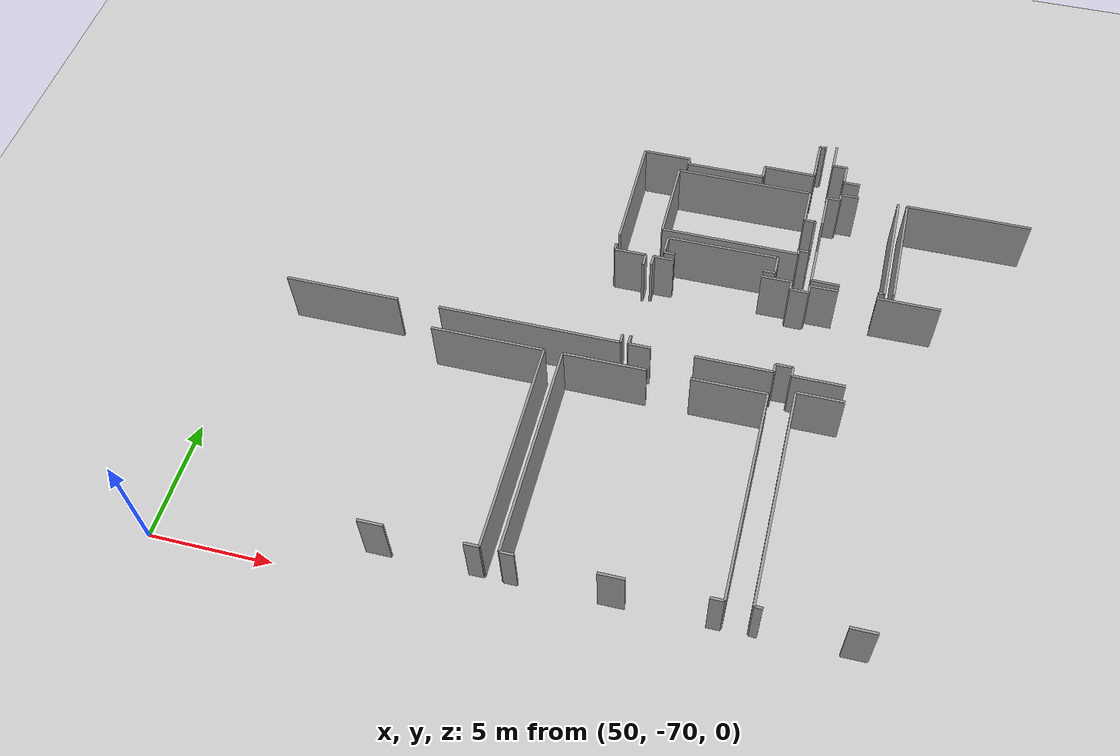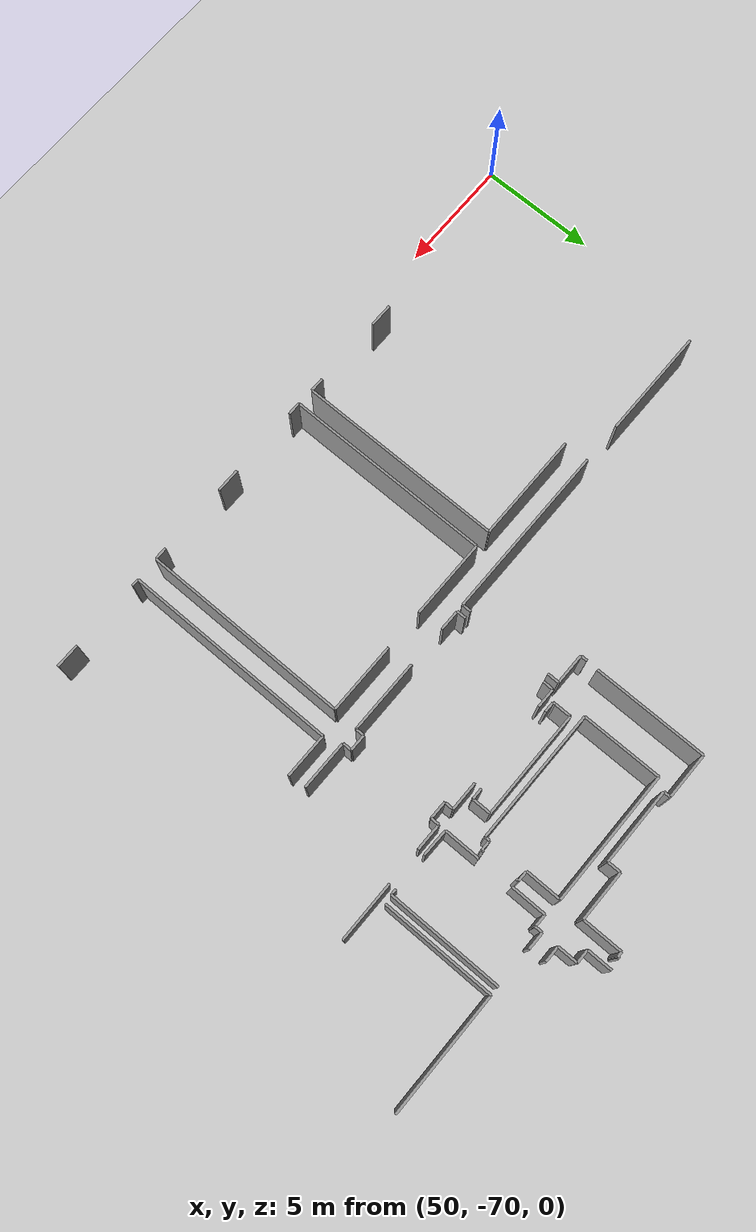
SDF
<sdf version="1.6">
 <world name="default">
  <model name="ground_plane">
   <static>1</static>
   <link name="link">
    <collision name="collision">
     <geometry><plane><normal>0 0 1</normal><size>100 100</size></plane></geometry>
     <surface><friction><ode><mu>100</mu><mu2>50</mu2></ode></friction></surface>
    </collision>
    <visual name="visual">
     <cast_shadows>0</cast_shadows>
     <geometry><plane><normal>0 0 1</normal><size>100 100</size></plane></geometry>
     <material>
      <script><uri>file://media/materials/scripts/gazebo.material</uri><name>Gazebo/Grey</name></script>
     </material>
    </visual>
   </link>
  </model>
  <model name="0510035519_A_40_1_102">
   <static>1</static>
   <link name="Wall_831">
    <collision name="Wall_831_Collision">
     <geometry><box><size>4.66946244758 0.1 2.5</size></box></geometry>
     <pose>2.33473122379 0 1.25 0 0 0</pose>
    </collision>
    <visual name="Wall_831_Visual">
     <pose>2.33473122379 0 1.25 0 0 0</pose>
     <geometry><box><size>4.66946244758 0.1 2.5</size></box></geometry>
     <material>
      <script><uri>file://media/materials/scripts/gazebo.material</uri><name>Gazebo/Grey</name></script>
      <ambient>1 1 1 1</ambient>
     </material>
    </visual>
    <pose>174.856525607 -128.491294955 0 0 0 0.0</pose>
   </link>
   <link name="Wall_832">
    <collision name="Wall_832_Collision">
     <geometry><box><size>8.89414156818 0.1 2.5</size></box></geometry>
     <pose>4.44707078409 0 1.25 0 0 0</pose>
    </collision>
    <visual name="Wall_832_Visual">
     <pose>4.44707078409 0 1.25 0 0 0</pose>
     <geometry><box><size>8.89414156818 0.1 2.5</size></box></geometry>
     <material>
      <script><uri>file://media/materials/scripts/gazebo.material</uri><name>Gazebo/Grey</name></script>
      <ambient>1 1 1 1</ambient>
     </material>
    </visual>
    <pose>179.525988054 -128.491294955 0 0 0 -1.57079632679</pose>
   </link>
   <link name="Wall_833">
    <collision name="Wall_833_Collision">
     <geometry><box><size>0.605921972296 0.1 2.5</size></box></geometry>
     <pose>0.302960986148 0 1.25 0 0 0</pose>
    </collision>
    <visual name="Wall_833_Visual">
     <pose>0.302960986148 0 1.25 0 0 0</pose>
     <geometry><box><size>0.605921972296 0.1 2.5</size></box></geometry>
     <material>
      <script><uri>file://media/materials/scripts/gazebo.material</uri><name>Gazebo/Grey</name></script>
      <ambient>1 1 1 1</ambient>
     </material>
    </visual>
    <pose>179.525988054 -137.385436523 0 0 0 3.14159265359</pose>
   </link>
   <link name="Wall_834">
    <collision name="Wall_834_Collision">
     <geometry><box><size>1.02605159487 0.1 2.5</size></box></geometry>
     <pose>0.513025797433 0 1.25 0 0 0</pose>
    </collision>
    <visual name="Wall_834_Visual">
     <pose>0.513025797433 0 1.25 0 0 0</pose>
     <geometry><box><size>1.02605159487 0.1 2.5</size></box></geometry>
     <material>
      <script><uri>file://media/materials/scripts/gazebo.material</uri><name>Gazebo/Grey</name></script>
      <ambient>1 1 1 1</ambient>
     </material>
    </visual>
    <pose>175.895539459 -137.385436523 0 0 0 3.14159265359</pose>
   </link>
   <link name="Wall_836">
    <collision name="Wall_836_Collision">
     <geometry><box><size>8.89185411107 0.1 2.5</size></box></geometry>
     <pose>4.44592705553 0 1.25 0 0 0</pose>
    </collision>
    <visual name="Wall_836_Visual">
     <pose>4.44592705553 0 1.25 0 0 0</pose>
     <geometry><box><size>8.89185411107 0.1 2.5</size></box></geometry>
     <material>
      <script><uri>file://media/materials/scripts/gazebo.material</uri><name>Gazebo/Grey</name></script>
      <ambient>1 1 1 1</ambient>
     </material>
    </visual>
    <pose>180.270428263 -137.379590799 0 0 0 1.57079632679</pose>
   </link>
   <link name="Wall_837">
    <collision name="Wall_837_Collision">
     <geometry><box><size>3.4159359512 0.1 2.5</size></box></geometry>
     <pose>1.7079679756 0 1.25 0 0 0</pose>
    </collision>
    <visual name="Wall_837_Visual">
     <pose>1.7079679756 0 1.25 0 0 0</pose>
     <geometry><box><size>3.4159359512 0.1 2.5</size></box></geometry>
     <material>
      <script><uri>file://media/materials/scripts/gazebo.material</uri><name>Gazebo/Grey</name></script>
      <ambient>1 1 1 1</ambient>
     </material>
    </visual>
    <pose>180.270428263 -128.487736688 0 0 0 0.0</pose>
   </link>
   <link name="Wall_838">
    <collision name="Wall_838_Collision">
     <geometry><box><size>3.05095946118 0.1 2.5</size></box></geometry>
     <pose>1.52547973059 0 1.25 0 0 0</pose>
    </collision>
    <visual name="Wall_838_Visual">
     <pose>1.52547973059 0 1.25 0 0 0</pose>
     <geometry><box><size>3.05095946118 0.1 2.5</size></box></geometry>
     <material>
      <script><uri>file://media/materials/scripts/gazebo.material</uri><name>Gazebo/Grey</name></script>
      <ambient>1 1 1 1</ambient>
     </material>
    </visual>
    <pose>185.43855636 -128.487736688 0 0 0 0.0</pose>
   </link>
   <link name="Wall_839">
    <collision name="Wall_839_Collision">
     <geometry><box><size>8.92464099631 0.1 2.5</size></box></geometry>
     <pose>4.46232049816 0 1.25 0 0 0</pose>
    </collision>
    <visual name="Wall_839_Visual">
     <pose>4.46232049816 0 1.25 0 0 0</pose>
     <geometry><box><size>8.92464099631 0.1 2.5</size></box></geometry>
     <material>
      <script><uri>file://media/materials/scripts/gazebo.material</uri><name>Gazebo/Grey</name></script>
      <ambient>1 1 1 1</ambient>
     </material>
    </visual>
    <pose>188.489515822 -128.487736688 0 0 0 -1.57079632679</pose>
   </link>
   <link name="Wall_840">
    <collision name="Wall_840_Collision">
     <geometry><box><size>0.538060744694 0.1 2.5</size></box></geometry>
     <pose>0.269030372347 0 1.25 0 0 0</pose>
    </collision>
    <visual name="Wall_840_Visual">
     <pose>0.269030372347 0 1.25 0 0 0</pose>
     <geometry><box><size>0.538060744694 0.1 2.5</size></box></geometry>
     <material>
      <script><uri>file://media/materials/scripts/gazebo.material</uri><name>Gazebo/Grey</name></script>
      <ambient>1 1 1 1</ambient>
     </material>
    </visual>
    <pose>188.489515822 -137.412377685 0 0 0 3.14159265359</pose>
   </link>
   <link name="Wall_841">
    <collision name="Wall_841_Collision">
     <geometry><box><size>1.03240564239 0.1 2.5</size></box></geometry>
     <pose>0.516202821197 0 1.25 0 0 0</pose>
    </collision>
    <visual name="Wall_841_Visual">
     <pose>0.516202821197 0 1.25 0 0 0</pose>
     <geometry><box><size>1.03240564239 0.1 2.5</size></box></geometry>
     <material>
      <script><uri>file://media/materials/scripts/gazebo.material</uri><name>Gazebo/Grey</name></script>
      <ambient>1 1 1 1</ambient>
     </material>
    </visual>
    <pose>184.913966196 -137.412377685 0 0 0 3.14159265359</pose>
   </link>
   <link name="Wall_842">
    <collision name="Wall_842_Collision">
     <geometry><box><size>0.555852077773 0.1 2.5</size></box></geometry>
     <pose>0.277926038887 0 1.25 0 0 0</pose>
    </collision>
    <visual name="Wall_842_Visual">
     <pose>0.277926038887 0 1.25 0 0 0</pose>
     <geometry><box><size>0.555852077773 0.1 2.5</size></box></geometry>
     <material>
      <script><uri>file://media/materials/scripts/gazebo.material</uri><name>Gazebo/Grey</name></script>
      <ambient>1 1 1 1</ambient>
     </material>
    </visual>
    <pose>180.831363579 -137.412377685 0 0 0 3.14159265359</pose>
   </link>
   <link name="Wall_843">
    <collision name="Wall_843_Collision">
     <geometry><box><size>0.0331785948003 0.1 2.5</size></box></geometry>
     <pose>0.0165892974001 0 1.25 0 0 0</pose>
    </collision>
    <visual name="Wall_843_Visual">
     <pose>0.0165892974001 0 1.25 0 0 0</pose>
     <geometry><box><size>0.0331785948003 0.1 2.5</size></box></geometry>
     <material>
      <script><uri>file://media/materials/scripts/gazebo.material</uri><name>Gazebo/Grey</name></script>
      <ambient>1 1 1 1</ambient>
     </material>
    </visual>
    <pose>180.275511501 -137.412377685 0 0 0 1.72461047703</pose>
   </link>
   <link name="Wall_844">
    <collision name="Wall_844_Collision">
     <geometry><box><size>9.1907485068 0.1 2.5</size></box></geometry>
     <pose>4.5953742534 0 1.25 0 0 0</pose>
    </collision>
    <visual name="Wall_844_Visual">
     <pose>4.5953742534 0 1.25 0 0 0</pose>
     <geometry><box><size>9.1907485068 0.1 2.5</size></box></geometry>
     <material>
      <script><uri>file://media/materials/scripts/gazebo.material</uri><name>Gazebo/Grey</name></script>
      <ambient>1 1 1 1</ambient>
     </material>
    </visual>
    <pose>189.523954759 -137.367391028 0 0 0 1.57079632679</pose>
   </link>
   <link name="Wall_845">
    <collision name="Wall_845_Collision">
     <geometry><box><size>1.92476807727 0.1 2.5</size></box></geometry>
     <pose>0.962384038633 0 1.25 0 0 0</pose>
    </collision>
    <visual name="Wall_845_Visual">
     <pose>0.962384038633 0 1.25 0 0 0</pose>
     <geometry><box><size>1.92476807727 0.1 2.5</size></box></geometry>
     <material>
      <script><uri>file://media/materials/scripts/gazebo.material</uri><name>Gazebo/Grey</name></script>
      <ambient>1 1 1 1</ambient>
     </material>
    </visual>
    <pose>189.523954759 -128.176642521 0 0 0 0.0</pose>
   </link>
   <link name="Wall_849">
    <collision name="Wall_849_Collision">
     <geometry><box><size>1.03570974711 0.1 2.5</size></box></geometry>
     <pose>0.517854873554 0 1.25 0 0 0</pose>
    </collision>
    <visual name="Wall_849_Visual">
     <pose>0.517854873554 0 1.25 0 0 0</pose>
     <geometry><box><size>1.03570974711 0.1 2.5</size></box></geometry>
     <material>
      <script><uri>file://media/materials/scripts/gazebo.material</uri><name>Gazebo/Grey</name></script>
      <ambient>1 1 1 1</ambient>
     </material>
    </visual>
    <pose>193.904689287 -137.384928199 0 0 0 3.14159265359</pose>
   </link>
   <link name="Wall_850">
    <collision name="Wall_850_Collision">
     <geometry><box><size>0.319454919681 0.1 2.5</size></box></geometry>
     <pose>0.159727459841 0 1.25 0 0 0</pose>
    </collision>
    <visual name="Wall_850_Visual">
     <pose>0.159727459841 0 1.25 0 0 0</pose>
     <geometry><box><size>0.319454919681 0.1 2.5</size></box></geometry>
     <material>
      <script><uri>file://media/materials/scripts/gazebo.material</uri><name>Gazebo/Grey</name></script>
      <ambient>1 1 1 1</ambient>
     </material>
    </visual>
    <pose>189.842927945 -137.384928199 0 0 0 3.08666787175</pose>
   </link>
   <link name="Wall_867">
    <collision name="Wall_867_Collision">
     <geometry><box><size>0.0866692082857 0.1 2.5</size></box></geometry>
     <pose>0.0433346041428 0 1.25 0 0 0</pose>
    </collision>
    <visual name="Wall_867_Visual">
     <pose>0.0433346041428 0 1.25 0 0 0</pose>
     <geometry><box><size>0.0866692082857 0.1 2.5</size></box></geometry>
     <material>
      <script><uri>file://media/materials/scripts/gazebo.material</uri><name>Gazebo/Grey</name></script>
      <ambient>1 1 1 1</ambient>
     </material>
    </visual>
    <pose>188.76604397 -114.983098234 0 0 0 -1.57079632679</pose>
   </link>
   <link name="Wall_868">
    <collision name="Wall_868_Collision">
     <geometry><box><size>0.240182996569 0.1 2.5</size></box></geometry>
     <pose>0.120091498284 0 1.25 0 0 0</pose>
    </collision>
    <visual name="Wall_868_Visual">
     <pose>0.120091498284 0 1.25 0 0 0</pose>
     <geometry><box><size>0.240182996569 0.1 2.5</size></box></geometry>
     <material>
      <script><uri>file://media/materials/scripts/gazebo.material</uri><name>Gazebo/Grey</name></script>
      <ambient>1 1 1 1</ambient>
     </material>
    </visual>
    <pose>188.76604397 -115.069767442 0 0 0 3.14159265359</pose>
   </link>
   <link name="Wall_869">
    <collision name="Wall_869_Collision">
     <geometry><box><size>1.73567162282 0.1 2.5</size></box></geometry>
     <pose>0.867835811412 0 1.25 0 0 0</pose>
    </collision>
    <visual name="Wall_869_Visual">
     <pose>0.867835811412 0 1.25 0 0 0</pose>
     <geometry><box><size>1.73567162282 0.1 2.5</size></box></geometry>
     <material>
      <script><uri>file://media/materials/scripts/gazebo.material</uri><name>Gazebo/Grey</name></script>
      <ambient>1 1 1 1</ambient>
     </material>
    </visual>
    <pose>188.525860973 -115.069767442 0 0 0 -1.57079632679</pose>
   </link>
   <link name="Wall_870">
    <collision name="Wall_870_Collision">
     <geometry><box><size>2.15961367391 0.1 2.5</size></box></geometry>
     <pose>1.07980683696 0 1.25 0 0 0</pose>
    </collision>
    <visual name="Wall_870_Visual">
     <pose>1.07980683696 0 1.25 0 0 0</pose>
     <geometry><box><size>2.15961367391 0.1 2.5</size></box></geometry>
     <material>
      <script><uri>file://media/materials/scripts/gazebo.material</uri><name>Gazebo/Grey</name></script>
      <ambient>1 1 1 1</ambient>
     </material>
    </visual>
    <pose>188.525860973 -116.805439065 0 0 0 3.14159265359</pose>
   </link>
   <link name="Wall_871">
    <collision name="Wall_871_Collision">
     <geometry><box><size>0.590418096327 0.1 2.5</size></box></geometry>
     <pose>0.295209048164 0 1.25 0 0 0</pose>
    </collision>
    <visual name="Wall_871_Visual">
     <pose>0.295209048164 0 1.25 0 0 0</pose>
     <geometry><box><size>0.590418096327 0.1 2.5</size></box></geometry>
     <material>
      <script><uri>file://media/materials/scripts/gazebo.material</uri><name>Gazebo/Grey</name></script>
      <ambient>1 1 1 1</ambient>
     </material>
    </visual>
    <pose>186.3662473 -116.805439065 0 0 0 -1.57079632679</pose>
   </link>
   <link name="Wall_872">
    <collision name="Wall_872_Collision">
     <geometry><box><size>3.29876731478 0.1 2.5</size></box></geometry>
     <pose>1.64938365739 0 1.25 0 0 0</pose>
    </collision>
    <visual name="Wall_872_Visual">
     <pose>1.64938365739 0 1.25 0 0 0</pose>
     <geometry><box><size>3.29876731478 0.1 2.5</size></box></geometry>
     <material>
      <script><uri>file://media/materials/scripts/gazebo.material</uri><name>Gazebo/Grey</name></script>
      <ambient>1 1 1 1</ambient>
     </material>
    </visual>
    <pose>186.3662473 -117.395857161 0 0 0 3.14159265359</pose>
   </link>
   <link name="Wall_873">
    <collision name="Wall_873_Collision">
     <geometry><box><size>0.295081967213 0.1 2.5</size></box></geometry>
     <pose>0.147540983607 0 1.25 0 0 0</pose>
    </collision>
    <visual name="Wall_873_Visual">
     <pose>0.147540983607 0 1.25 0 0 0</pose>
     <geometry><box><size>0.295081967213 0.1 2.5</size></box></geometry>
     <material>
      <script><uri>file://media/materials/scripts/gazebo.material</uri><name>Gazebo/Grey</name></script>
      <ambient>1 1 1 1</ambient>
     </material>
    </visual>
    <pose>183.067479985 -117.395857161 0 0 0 1.57079632679</pose>
   </link>
   <link name="Wall_874">
    <collision name="Wall_874_Collision">
     <geometry><box><size>1.99491676198 0.1 2.5</size></box></geometry>
     <pose>0.997458380989 0 1.25 0 0 0</pose>
    </collision>
    <visual name="Wall_874_Visual">
     <pose>0.997458380989 0 1.25 0 0 0</pose>
     <geometry><box><size>1.99491676198 0.1 2.5</size></box></geometry>
     <material>
      <script><uri>file://media/materials/scripts/gazebo.material</uri><name>Gazebo/Grey</name></script>
      <ambient>1 1 1 1</ambient>
     </material>
    </visual>
    <pose>183.067479985 -117.100775194 0 0 0 3.14159265359</pose>
   </link>
   <link name="Wall_875">
    <collision name="Wall_875_Collision">
     <geometry><box><size>4.9447197865 0.1 2.5</size></box></geometry>
     <pose>2.47235989325 0 1.25 0 0 0</pose>
    </collision>
    <visual name="Wall_875_Visual">
     <pose>2.47235989325 0 1.25 0 0 0</pose>
     <geometry><box><size>4.9447197865 0.1 2.5</size></box></geometry>
     <material>
      <script><uri>file://media/materials/scripts/gazebo.material</uri><name>Gazebo/Grey</name></script>
      <ambient>1 1 1 1</ambient>
     </material>
    </visual>
    <pose>181.072563223 -117.100775194 0 0 0 -1.57079632679</pose>
   </link>
   <link name="Wall_887">
    <collision name="Wall_887_Collision">
     <geometry><box><size>0.294827805312 0.1 2.5</size></box></geometry>
     <pose>0.147413902656 0 1.25 0 0 0</pose>
    </collision>
    <visual name="Wall_887_Visual">
     <pose>0.147413902656 0 1.25 0 0 0</pose>
     <geometry><box><size>0.294827805312 0.1 2.5</size></box></geometry>
     <material>
      <script><uri>file://media/materials/scripts/gazebo.material</uri><name>Gazebo/Grey</name></script>
      <ambient>1 1 1 1</ambient>
     </material>
    </visual>
    <pose>181.053246918 -122.541364849 0 0 0 -1.57079632679</pose>
   </link>
   <link name="Wall_888">
    <collision name="Wall_888_Collision">
     <geometry><box><size>1.326470962 0.1 2.5</size></box></geometry>
     <pose>0.663235481001 0 1.25 0 0 0</pose>
    </collision>
    <visual name="Wall_888_Visual">
     <pose>0.663235481001 0 1.25 0 0 0</pose>
     <geometry><box><size>1.326470962 0.1 2.5</size></box></geometry>
     <material>
      <script><uri>file://media/materials/scripts/gazebo.material</uri><name>Gazebo/Grey</name></script>
      <ambient>1 1 1 1</ambient>
     </material>
    </visual>
    <pose>181.053246918 -122.836192655 0 0 0 0.0</pose>
   </link>
   <link name="Wall_889">
    <collision name="Wall_889_Collision">
     <geometry><box><size>0.514932011691 0.1 2.5</size></box></geometry>
     <pose>0.257466005846 0 1.25 0 0 0</pose>
    </collision>
    <visual name="Wall_889_Visual">
     <pose>0.257466005846 0 1.25 0 0 0</pose>
     <geometry><box><size>0.514932011691 0.1 2.5</size></box></geometry>
     <material>
      <script><uri>file://media/materials/scripts/gazebo.material</uri><name>Gazebo/Grey</name></script>
      <ambient>1 1 1 1</ambient>
     </material>
    </visual>
    <pose>182.37971788 -122.836192655 0 0 0 -1.57079632679</pose>
   </link>
   <link name="Wall_890">
    <collision name="Wall_890_Collision">
     <geometry><box><size>0.390138518236 0.1 2.5</size></box></geometry>
     <pose>0.195069259118 0 1.25 0 0 0</pose>
    </collision>
    <visual name="Wall_890_Visual">
     <pose>0.195069259118 0 1.25 0 0 0</pose>
     <geometry><box><size>0.390138518236 0.1 2.5</size></box></geometry>
     <material>
      <script><uri>file://media/materials/scripts/gazebo.material</uri><name>Gazebo/Grey</name></script>
      <ambient>1 1 1 1</ambient>
     </material>
    </visual>
    <pose>182.37971788 -127.041555471 0 0 0 -1.57079632679</pose>
   </link>
   <link name="Wall_891">
    <collision name="Wall_891_Collision">
     <geometry><box><size>7.53945863515 0.1 2.5</size></box></geometry>
     <pose>3.76972931758 0 1.25 0 0 0</pose>
    </collision>
    <visual name="Wall_891_Visual">
     <pose>3.76972931758 0 1.25 0 0 0</pose>
     <geometry><box><size>7.53945863515 0.1 2.5</size></box></geometry>
     <material>
      <script><uri>file://media/materials/scripts/gazebo.material</uri><name>Gazebo/Grey</name></script>
      <ambient>1 1 1 1</ambient>
     </material>
    </visual>
    <pose>182.37971788 -127.431693989 0 0 0 3.14159265359</pose>
   </link>
   <link name="Wall_892">
    <collision name="Wall_892_Collision">
     <geometry><box><size>4.7426610751 0.1 2.5</size></box></geometry>
     <pose>2.37133053755 0 1.25 0 0 0</pose>
    </collision>
    <visual name="Wall_892_Visual">
     <pose>2.37133053755 0 1.25 0 0 0</pose>
     <geometry><box><size>4.7426610751 0.1 2.5</size></box></geometry>
     <material>
      <script><uri>file://media/materials/scripts/gazebo.material</uri><name>Gazebo/Grey</name></script>
      <ambient>1 1 1 1</ambient>
     </material>
    </visual>
    <pose>173.085017156 -127.431693989 0 0 0 3.14159265359</pose>
   </link>
   <link name="Wall_979">
    <collision name="Wall_979_Collision">
     <geometry><box><size>1.55547083492 0.1 2.5</size></box></geometry>
     <pose>0.777735417461 0 1.25 0 0 0</pose>
    </collision>
    <visual name="Wall_979_Visual">
     <pose>0.777735417461 0 1.25 0 0 0</pose>
     <geometry><box><size>1.55547083492 0.1 2.5</size></box></geometry>
     <material>
      <script><uri>file://media/materials/scripts/gazebo.material</uri><name>Gazebo/Grey</name></script>
      <ambient>1 1 1 1</ambient>
     </material>
    </visual>
    <pose>189.26877621 -122.553818783 0 0 0 1.57079632679</pose>
   </link>
   <link name="Wall_980">
    <collision name="Wall_980_Collision">
     <geometry><box><size>1.49980937857 0.1 2.5</size></box></geometry>
     <pose>0.749904689287 0 1.25 0 0 0</pose>
    </collision>
    <visual name="Wall_980_Visual">
     <pose>0.749904689287 0 1.25 0 0 0</pose>
     <geometry><box><size>1.49980937857 0.1 2.5</size></box></geometry>
     <material>
      <script><uri>file://media/materials/scripts/gazebo.material</uri><name>Gazebo/Grey</name></script>
      <ambient>1 1 1 1</ambient>
     </material>
    </visual>
    <pose>189.26877621 -119.452281103 0 0 0 1.57079632679</pose>
   </link>
   <link name="Wall_981">
    <collision name="Wall_981_Collision">
     <geometry><box><size>0.549752192146 0.1 2.5</size></box></geometry>
     <pose>0.274876096073 0 1.25 0 0 0</pose>
    </collision>
    <visual name="Wall_981_Visual">
     <pose>0.274876096073 0 1.25 0 0 0</pose>
     <geometry><box><size>0.549752192146 0.1 2.5</size></box></geometry>
     <material>
      <script><uri>file://media/materials/scripts/gazebo.material</uri><name>Gazebo/Grey</name></script>
      <ambient>1 1 1 1</ambient>
     </material>
    </visual>
    <pose>189.26877621 -117.952471724 0 0 0 0.0</pose>
   </link>
   <link name="Wall_982">
    <collision name="Wall_982_Collision">
     <geometry><box><size>0.319735671623 0.1 2.5</size></box></geometry>
     <pose>0.159867835811 0 1.25 0 0 0</pose>
    </collision>
    <visual name="Wall_982_Visual">
     <pose>0.159867835811 0 1.25 0 0 0</pose>
     <geometry><box><size>0.319735671623 0.1 2.5</size></box></geometry>
     <material>
      <script><uri>file://media/materials/scripts/gazebo.material</uri><name>Gazebo/Grey</name></script>
      <ambient>1 1 1 1</ambient>
     </material>
    </visual>
    <pose>189.818528403 -117.952471724 0 0 0 1.57079632679</pose>
   </link>
   <link name="Wall_983">
    <collision name="Wall_983_Collision">
     <geometry><box><size>0.757910789173 0.1 2.5</size></box></geometry>
     <pose>0.378955394586 0 1.25 0 0 0</pose>
    </collision>
    <visual name="Wall_983_Visual">
     <pose>0.378955394586 0 1.25 0 0 0</pose>
     <geometry><box><size>0.757910789173 0.1 2.5</size></box></geometry>
     <material>
      <script><uri>file://media/materials/scripts/gazebo.material</uri><name>Gazebo/Grey</name></script>
      <ambient>1 1 1 1</ambient>
     </material>
    </visual>
    <pose>189.818528403 -117.632736053 0 0 0 0.0</pose>
   </link>
   <link name="Wall_984">
    <collision name="Wall_984_Collision">
     <geometry><box><size>4.94268649129 0.1 2.5</size></box></geometry>
     <pose>2.47134324565 0 1.25 0 0 0</pose>
    </collision>
    <visual name="Wall_984_Visual">
     <pose>2.47134324565 0 1.25 0 0 0</pose>
     <geometry><box><size>4.94268649129 0.1 2.5</size></box></geometry>
     <material>
      <script><uri>file://media/materials/scripts/gazebo.material</uri><name>Gazebo/Grey</name></script>
      <ambient>1 1 1 1</ambient>
     </material>
    </visual>
    <pose>192.27271572 -117.632736053 0 0 0 -1.57079632679</pose>
   </link>
   <link name="Wall_985">
    <collision name="Wall_985_Collision">
     <geometry><box><size>0.248824501207 0.1 2.5</size></box></geometry>
     <pose>0.124412250604 0 1.25 0 0 0</pose>
    </collision>
    <visual name="Wall_985_Visual">
     <pose>0.124412250604 0 1.25 0 0 0</pose>
     <geometry><box><size>0.248824501207 0.1 2.5</size></box></geometry>
     <material>
      <script><uri>file://media/materials/scripts/gazebo.material</uri><name>Gazebo/Grey</name></script>
      <ambient>1 1 1 1</ambient>
     </material>
    </visual>
    <pose>192.27271572 -122.575422544 0 0 0 3.14159265359</pose>
   </link>
   <link name="Wall_986">
    <collision name="Wall_986_Collision">
     <geometry><box><size>1.17493494014 0.1 2.5</size></box></geometry>
     <pose>0.58746747007 0 1.25 0 0 0</pose>
    </collision>
    <visual name="Wall_986_Visual">
     <pose>0.58746747007 0 1.25 0 0 0</pose>
     <geometry><box><size>1.17493494014 0.1 2.5</size></box></geometry>
     <material>
      <script><uri>file://media/materials/scripts/gazebo.material</uri><name>Gazebo/Grey</name></script>
      <ambient>1 1 1 1</ambient>
     </material>
    </visual>
    <pose>190.443512517 -122.575422544 0 0 0 3.12320441916</pose>
   </link>
   <link name="Wall_987">
    <collision name="Wall_987_Collision">
     <geometry><box><size>3.44719786504 0.1 2.5</size></box></geometry>
     <pose>1.72359893252 0 1.25 0 0 0</pose>
    </collision>
    <visual name="Wall_987_Visual">
     <pose>1.72359893252 0 1.25 0 0 0</pose>
     <geometry><box><size>3.44719786504 0.1 2.5</size></box></geometry>
     <material>
      <script><uri>file://media/materials/scripts/gazebo.material</uri><name>Gazebo/Grey</name></script>
      <ambient>1 1 1 1</ambient>
     </material>
    </visual>
    <pose>182.756131656 -121.307154658 0 0 0 1.57079632679</pose>
   </link>
   <link name="Wall_988">
    <collision name="Wall_988_Collision">
     <geometry><box><size>5.7524463083 0.1 2.5</size></box></geometry>
     <pose>2.87622315415 0 1.25 0 0 0</pose>
    </collision>
    <visual name="Wall_988_Visual">
     <pose>2.87622315415 0 1.25 0 0 0</pose>
     <geometry><box><size>5.7524463083 0.1 2.5</size></box></geometry>
     <material>
      <script><uri>file://media/materials/scripts/gazebo.material</uri><name>Gazebo/Grey</name></script>
      <ambient>1 1 1 1</ambient>
     </material>
    </visual>
    <pose>182.756131656 -117.859956792 0 0 0 0.0</pose>
   </link>
   <link name="Wall_989">
    <collision name="Wall_989_Collision">
     <geometry><box><size>1.5516584064 0.1 2.5</size></box></geometry>
     <pose>0.775829203202 0 1.25 0 0 0</pose>
    </collision>
    <visual name="Wall_989_Visual">
     <pose>0.775829203202 0 1.25 0 0 0</pose>
     <geometry><box><size>1.5516584064 0.1 2.5</size></box></geometry>
     <material>
      <script><uri>file://media/materials/scripts/gazebo.material</uri><name>Gazebo/Grey</name></script>
      <ambient>1 1 1 1</ambient>
     </material>
    </visual>
    <pose>188.508577964 -117.859956792 0 0 0 -1.57079632679</pose>
   </link>
   <link name="Wall_990">
    <collision name="Wall_990_Collision">
     <geometry><box><size>0.453678993519 0.1 2.5</size></box></geometry>
     <pose>0.226839496759 0 1.25 0 0 0</pose>
    </collision>
    <visual name="Wall_990_Visual">
     <pose>0.226839496759 0 1.25 0 0 0</pose>
     <geometry><box><size>0.453678993519 0.1 2.5</size></box></geometry>
     <material>
      <script><uri>file://media/materials/scripts/gazebo.material</uri><name>Gazebo/Grey</name></script>
      <ambient>1 1 1 1</ambient>
     </material>
    </visual>
    <pose>188.508577964 -119.411615199 0 0 0 0.0</pose>
   </link>
   <link name="Wall_991">
    <collision name="Wall_991_Collision">
     <geometry><box><size>0.109289617486 0.1 2.5</size></box></geometry>
     <pose>0.0546448087432 0 1.25 0 0 0</pose>
    </collision>
    <visual name="Wall_991_Visual">
     <pose>0.0546448087432 0 1.25 0 0 0</pose>
     <geometry><box><size>0.109289617486 0.1 2.5</size></box></geometry>
     <material>
      <script><uri>file://media/materials/scripts/gazebo.material</uri><name>Gazebo/Grey</name></script>
      <ambient>1 1 1 1</ambient>
     </material>
    </visual>
    <pose>188.962256958 -119.411615199 0 0 0 -1.57079632679</pose>
   </link>
   <link name="Wall_992">
    <collision name="Wall_992_Collision">
     <geometry><box><size>0.0981064938366 0.1 2.5</size></box></geometry>
     <pose>0.0490532469183 0 1.25 0 0 0</pose>
    </collision>
    <visual name="Wall_992_Visual">
     <pose>0.0490532469183 0 1.25 0 0 0</pose>
     <geometry><box><size>0.0981064938366 0.1 2.5</size></box></geometry>
     <material>
      <script><uri>file://media/materials/scripts/gazebo.material</uri><name>Gazebo/Grey</name></script>
      <ambient>1 1 1 1</ambient>
     </material>
    </visual>
    <pose>188.962256958 -121.012326852 0 0 0 -1.57079632679</pose>
   </link>
   <link name="Wall_993">
    <collision name="Wall_993_Collision">
     <geometry><box><size>0.437158469945 0.1 2.5</size></box></geometry>
     <pose>0.218579234973 0 1.25 0 0 0</pose>
    </collision>
    <visual name="Wall_993_Visual">
     <pose>0.218579234973 0 1.25 0 0 0</pose>
     <geometry><box><size>0.437158469945 0.1 2.5</size></box></geometry>
     <material>
      <script><uri>file://media/materials/scripts/gazebo.material</uri><name>Gazebo/Grey</name></script>
      <ambient>1 1 1 1</ambient>
     </material>
    </visual>
    <pose>188.962256958 -121.110433346 0 0 0 3.14159265359</pose>
   </link>
   <link name="Wall_994">
    <collision name="Wall_994_Collision">
     <geometry><box><size>0.205616978015 0.1 2.5</size></box></geometry>
     <pose>0.102808489008 0 1.25 0 0 0</pose>
    </collision>
    <visual name="Wall_994_Visual">
     <pose>0.102808489008 0 1.25 0 0 0</pose>
     <geometry><box><size>0.205616978015 0.1 2.5</size></box></geometry>
     <material>
      <script><uri>file://media/materials/scripts/gazebo.material</uri><name>Gazebo/Grey</name></script>
      <ambient>1 1 1 1</ambient>
     </material>
    </visual>
    <pose>188.525098488 -121.110433346 0 0 0 -1.57079632679</pose>
   </link>
   <link name="Wall_995">
    <collision name="Wall_995_Collision">
     <geometry><box><size>5.76897369036 0.1 2.5</size></box></geometry>
     <pose>2.88448684518 0 1.25 0 0 0</pose>
    </collision>
    <visual name="Wall_995_Visual">
     <pose>2.88448684518 0 1.25 0 0 0</pose>
     <geometry><box><size>5.76897369036 0.1 2.5</size></box></geometry>
     <material>
      <script><uri>file://media/materials/scripts/gazebo.material</uri><name>Gazebo/Grey</name></script>
      <ambient>1 1 1 1</ambient>
     </material>
    </visual>
    <pose>188.525098488 -121.316050324 0 0 0 3.14005066873</pose>
   </link>
   <link name="Wall_996">
    <collision name="Wall_996_Collision">
     <geometry><box><size>0.693861990088 0.1 2.5</size></box></geometry>
     <pose>0.346930995044 0 1.25 0 0 0</pose>
    </collision>
    <visual name="Wall_996_Visual">
     <pose>0.346930995044 0 1.25 0 0 0</pose>
     <geometry><box><size>0.693861990088 0.1 2.5</size></box></geometry>
     <material>
      <script><uri>file://media/materials/scripts/gazebo.material</uri><name>Gazebo/Grey</name></script>
      <ambient>1 1 1 1</ambient>
     </material>
    </visual>
    <pose>183.093912822 -122.402338289 0 0 0 1.57079632679</pose>
   </link>
   <link name="Wall_997">
    <collision name="Wall_997_Collision">
     <geometry><box><size>4.65878764773 0.1 2.5</size></box></geometry>
     <pose>2.32939382387 0 1.25 0 0 0</pose>
    </collision>
    <visual name="Wall_997_Visual">
     <pose>2.32939382387 0 1.25 0 0 0</pose>
     <geometry><box><size>4.65878764773 0.1 2.5</size></box></geometry>
     <material>
      <script><uri>file://media/materials/scripts/gazebo.material</uri><name>Gazebo/Grey</name></script>
      <ambient>1 1 1 1</ambient>
     </material>
    </visual>
    <pose>183.093912822 -121.708476299 0 0 0 0.0</pose>
   </link>
   <link name="Wall_998">
    <collision name="Wall_998_Collision">
     <geometry><box><size>0.813063921718 0.1 2.5</size></box></geometry>
     <pose>0.406531960859 0 1.25 0 0 0</pose>
    </collision>
    <visual name="Wall_998_Visual">
     <pose>0.406531960859 0 1.25 0 0 0</pose>
     <geometry><box><size>0.813063921718 0.1 2.5</size></box></geometry>
     <material>
      <script><uri>file://media/materials/scripts/gazebo.material</uri><name>Gazebo/Grey</name></script>
      <ambient>1 1 1 1</ambient>
     </material>
    </visual>
    <pose>187.75270047 -121.708476299 0 0 0 -1.57079632679</pose>
   </link>
   <link name="Wall_999">
    <collision name="Wall_999_Collision">
     <geometry><box><size>0.488245012073 0.1 2.5</size></box></geometry>
     <pose>0.244122506036 0 1.25 0 0 0</pose>
    </collision>
    <visual name="Wall_999_Visual">
     <pose>0.244122506036 0 1.25 0 0 0</pose>
     <geometry><box><size>0.488245012073 0.1 2.5</size></box></geometry>
     <material>
      <script><uri>file://media/materials/scripts/gazebo.material</uri><name>Gazebo/Grey</name></script>
      <ambient>1 1 1 1</ambient>
     </material>
    </visual>
    <pose>187.75270047 -122.521540221 0 0 0 3.14159265359</pose>
   </link>
   <link name="Wall_1000">
    <collision name="Wall_1000_Collision">
     <geometry><box><size>0.453678993519 0.1 2.5</size></box></geometry>
     <pose>0.226839496759 0 1.25 0 0 0</pose>
    </collision>
    <visual name="Wall_1000_Visual">
     <pose>0.226839496759 0 1.25 0 0 0</pose>
     <geometry><box><size>0.453678993519 0.1 2.5</size></box></geometry>
     <material>
      <script><uri>file://media/materials/scripts/gazebo.material</uri><name>Gazebo/Grey</name></script>
      <ambient>1 1 1 1</ambient>
     </material>
    </visual>
    <pose>183.544796035 -122.521540221 0 0 0 3.14159265359</pose>
   </link>
   <link name="Wall_1001">
    <collision name="Wall_1001_Collision">
     <geometry><box><size>0.119234713466 0.1 2.5</size></box></geometry>
     <pose>0.0596173567331 0 1.25 0 0 0</pose>
    </collision>
    <visual name="Wall_1001_Visual">
     <pose>0.0596173567331 0 1.25 0 0 0</pose>
     <geometry><box><size>0.119234713466 0.1 2.5</size></box></geometry>
     <material>
      <script><uri>file://media/materials/scripts/gazebo.material</uri><name>Gazebo/Grey</name></script>
      <ambient>1 1 1 1</ambient>
     </material>
    </visual>
    <pose>183.091117042 -122.521540221 0 0 0 1.54734646828</pose>
   </link>
   <link name="Wall_1002">
    <collision name="Wall_1002_Collision">
     <geometry><box><size>4.87990850172 0.1 2.5</size></box></geometry>
     <pose>2.43995425086 0 1.25 0 0 0</pose>
    </collision>
    <visual name="Wall_1002_Visual">
     <pose>2.43995425086 0 1.25 0 0 0</pose>
     <geometry><box><size>4.87990850172 0.1 2.5</size></box></geometry>
     <material>
      <script><uri>file://media/materials/scripts/gazebo.material</uri><name>Gazebo/Grey</name></script>
      <ambient>1 1 1 1</ambient>
     </material>
    </visual>
    <pose>192.655229381 -122.536281611 0 0 0 1.57079632679</pose>
   </link>
   <link name="Wall_1003">
    <collision name="Wall_1003_Collision">
     <geometry><box><size>5.21235226839 0.1 2.5</size></box></geometry>
     <pose>2.6061761342 0 1.25 0 0 0</pose>
    </collision>
    <visual name="Wall_1003_Visual">
     <pose>2.6061761342 0 1.25 0 0 0</pose>
     <geometry><box><size>5.21235226839 0.1 2.5</size></box></geometry>
     <material>
      <script><uri>file://media/materials/scripts/gazebo.material</uri><name>Gazebo/Grey</name></script>
      <ambient>1 1 1 1</ambient>
     </material>
    </visual>
    <pose>192.655229381 -117.65637311 0 0 0 0.0</pose>
   </link>
   <link name="Wall_1044">
    <collision name="Wall_1044_Collision">
     <geometry><box><size>0.846867454569 0.1 2.5</size></box></geometry>
     <pose>0.423433727284 0 1.25 0 0 0</pose>
    </collision>
    <visual name="Wall_1044_Visual">
     <pose>0.423433727284 0 1.25 0 0 0</pose>
     <geometry><box><size>0.846867454569 0.1 2.5</size></box></geometry>
     <material>
      <script><uri>file://media/materials/scripts/gazebo.material</uri><name>Gazebo/Grey</name></script>
      <ambient>1 1 1 1</ambient>
     </material>
    </visual>
    <pose>182.723344771 -122.831363579 0 0 0 0.0</pose>
   </link>
   <link name="Wall_1045">
    <collision name="Wall_1045_Collision">
     <geometry><box><size>1.25098487737 0.1 2.5</size></box></geometry>
     <pose>0.625492438683 0 1.25 0 0 0</pose>
    </collision>
    <visual name="Wall_1045_Visual">
     <pose>0.625492438683 0 1.25 0 0 0</pose>
     <geometry><box><size>1.25098487737 0.1 2.5</size></box></geometry>
     <material>
      <script><uri>file://media/materials/scripts/gazebo.material</uri><name>Gazebo/Grey</name></script>
      <ambient>1 1 1 1</ambient>
     </material>
    </visual>
    <pose>187.250476554 -122.831363579 0 0 0 0.0</pose>
   </link>
   <link name="Wall_1046">
    <collision name="Wall_1046_Collision">
     <geometry><box><size>0.394713432456 0.1 2.5</size></box></geometry>
     <pose>0.197356716228 0 1.25 0 0 0</pose>
    </collision>
    <visual name="Wall_1046_Visual">
     <pose>0.197356716228 0 1.25 0 0 0</pose>
     <geometry><box><size>0.394713432456 0.1 2.5</size></box></geometry>
     <material>
      <script><uri>file://media/materials/scripts/gazebo.material</uri><name>Gazebo/Grey</name></script>
      <ambient>1 1 1 1</ambient>
     </material>
    </visual>
    <pose>188.501461431 -122.831363579 0 0 0 -1.57079632679</pose>
   </link>
   <link name="Wall_1047">
    <collision name="Wall_1047_Collision">
     <geometry><box><size>0.761214893887 0.1 2.5</size></box></geometry>
     <pose>0.380607446944 0 1.25 0 0 0</pose>
    </collision>
    <visual name="Wall_1047_Visual">
     <pose>0.380607446944 0 1.25 0 0 0</pose>
     <geometry><box><size>0.761214893887 0.1 2.5</size></box></geometry>
     <material>
      <script><uri>file://media/materials/scripts/gazebo.material</uri><name>Gazebo/Grey</name></script>
      <ambient>1 1 1 1</ambient>
     </material>
    </visual>
    <pose>188.501461431 -123.226077011 0 0 0 0.0</pose>
   </link>
   <link name="Wall_1048">
    <collision name="Wall_1048_Collision">
     <geometry><box><size>0.356334985386 0.1 2.5</size></box></geometry>
     <pose>0.178167492693 0 1.25 0 0 0</pose>
    </collision>
    <visual name="Wall_1048_Visual">
     <pose>0.178167492693 0 1.25 0 0 0</pose>
     <geometry><box><size>0.356334985386 0.1 2.5</size></box></geometry>
     <material>
      <script><uri>file://media/materials/scripts/gazebo.material</uri><name>Gazebo/Grey</name></script>
      <ambient>1 1 1 1</ambient>
     </material>
    </visual>
    <pose>189.262676325 -123.226077011 0 0 0 1.57079632679</pose>
   </link>
   <link name="Wall_1049">
    <collision name="Wall_1049_Collision">
     <geometry><box><size>1.1691447452 0.1 2.5</size></box></geometry>
     <pose>0.584572372601 0 1.25 0 0 0</pose>
    </collision>
    <visual name="Wall_1049_Visual">
     <pose>0.584572372601 0 1.25 0 0 0</pose>
     <geometry><box><size>1.1691447452 0.1 2.5</size></box></geometry>
     <material>
      <script><uri>file://media/materials/scripts/gazebo.material</uri><name>Gazebo/Grey</name></script>
      <ambient>1 1 1 1</ambient>
     </material>
    </visual>
    <pose>189.262676325 -122.869742026 0 0 0 0.0</pose>
   </link>
   <link name="Wall_1050">
    <collision name="Wall_1050_Collision">
     <geometry><box><size>2.57720167747 0.1 2.5</size></box></geometry>
     <pose>1.28860083873 0 1.25 0 0 0</pose>
    </collision>
    <visual name="Wall_1050_Visual">
     <pose>1.28860083873 0 1.25 0 0 0</pose>
     <geometry><box><size>2.57720167747 0.1 2.5</size></box></geometry>
     <material>
      <script><uri>file://media/materials/scripts/gazebo.material</uri><name>Gazebo/Grey</name></script>
      <ambient>1 1 1 1</ambient>
     </material>
    </visual>
    <pose>192.018553819 -122.869742026 0 0 0 0.0</pose>
   </link>
   <link name="Wall_1060">
    <collision name="Wall_1060_Collision">
     <geometry><box><size>2.11869360783 0.1 2.5</size></box></geometry>
     <pose>1.05934680391 0 1.25 0 0 0</pose>
    </collision>
    <visual name="Wall_1060_Visual">
     <pose>1.05934680391 0 1.25 0 0 0</pose>
     <geometry><box><size>2.11869360783 0.1 2.5</size></box></geometry>
     <material>
      <script><uri>file://media/materials/scripts/gazebo.material</uri><name>Gazebo/Grey</name></script>
      <ambient>1 1 1 1</ambient>
     </material>
    </visual>
    <pose>191.368407676 -127.442114627 0 0 0 3.14159265359</pose>
   </link>
   <link name="Wall_1061">
    <collision name="Wall_1061_Collision">
     <geometry><box><size>0.396238403863 0.1 2.5</size></box></geometry>
     <pose>0.198119201932 0 1.25 0 0 0</pose>
    </collision>
    <visual name="Wall_1061_Visual">
     <pose>0.198119201932 0 1.25 0 0 0</pose>
     <geometry><box><size>0.396238403863 0.1 2.5</size></box></geometry>
     <material>
      <script><uri>file://media/materials/scripts/gazebo.material</uri><name>Gazebo/Grey</name></script>
      <ambient>1 1 1 1</ambient>
     </material>
    </visual>
    <pose>189.249714068 -127.442114627 0 0 0 1.57079632679</pose>
   </link>
   <link name="Wall_1062">
    <collision name="Wall_1062_Collision">
     <geometry><box><size>0.709874189859 0.1 2.5</size></box></geometry>
     <pose>0.354937094929 0 1.25 0 0 0</pose>
    </collision>
    <visual name="Wall_1062_Visual">
     <pose>0.354937094929 0 1.25 0 0 0</pose>
     <geometry><box><size>0.709874189859 0.1 2.5</size></box></geometry>
     <material>
      <script><uri>file://media/materials/scripts/gazebo.material</uri><name>Gazebo/Grey</name></script>
      <ambient>1 1 1 1</ambient>
     </material>
    </visual>
    <pose>189.249714068 -127.045876223 0 0 0 3.14159265359</pose>
   </link>
   <link name="Wall_1063">
    <collision name="Wall_1063_Collision">
     <geometry><box><size>0.376922099377 0.1 2.5</size></box></geometry>
     <pose>0.188461049689 0 1.25 0 0 0</pose>
    </collision>
    <visual name="Wall_1063_Visual">
     <pose>0.188461049689 0 1.25 0 0 0</pose>
     <geometry><box><size>0.376922099377 0.1 2.5</size></box></geometry>
     <material>
      <script><uri>file://media/materials/scripts/gazebo.material</uri><name>Gazebo/Grey</name></script>
      <ambient>1 1 1 1</ambient>
     </material>
    </visual>
    <pose>188.539839878 -127.045876223 0 0 0 -1.57079632679</pose>
   </link>
   <link name="Wall_1064">
    <collision name="Wall_1064_Collision">
     <geometry><box><size>3.16711144999 0.1 2.5</size></box></geometry>
     <pose>1.583555725 0 1.25 0 0 0</pose>
    </collision>
    <visual name="Wall_1064_Visual">
     <pose>1.583555725 0 1.25 0 0 0</pose>
     <geometry><box><size>3.16711144999 0.1 2.5</size></box></geometry>
     <material>
      <script><uri>file://media/materials/scripts/gazebo.material</uri><name>Gazebo/Grey</name></script>
      <ambient>1 1 1 1</ambient>
     </material>
    </visual>
    <pose>188.539839878 -127.422798323 0 0 0 3.14159265359</pose>
   </link>
   <link name="Wall_1065">
    <collision name="Wall_1065_Collision">
     <geometry><box><size>0.898462320498 0.1 2.5</size></box></geometry>
     <pose>0.449231160249 0 1.25 0 0 0</pose>
    </collision>
    <visual name="Wall_1065_Visual">
     <pose>0.449231160249 0 1.25 0 0 0</pose>
     <geometry><box><size>0.898462320498 0.1 2.5</size></box></geometry>
     <material>
      <script><uri>file://media/materials/scripts/gazebo.material</uri><name>Gazebo/Grey</name></script>
      <ambient>1 1 1 1</ambient>
     </material>
    </visual>
    <pose>183.608082348 -127.422798323 0 0 0 3.14159265359</pose>
   </link>
   <link name="Wall_1066">
    <collision name="Wall_1066_Collision">
     <geometry><box><size>0.402084127589 0.1 2.5</size></box></geometry>
     <pose>0.201042063795 0 1.25 0 0 0</pose>
    </collision>
    <visual name="Wall_1066_Visual">
     <pose>0.201042063795 0 1.25 0 0 0</pose>
     <geometry><box><size>0.402084127589 0.1 2.5</size></box></geometry>
     <material>
      <script><uri>file://media/materials/scripts/gazebo.material</uri><name>Gazebo/Grey</name></script>
      <ambient>1 1 1 1</ambient>
     </material>
    </visual>
    <pose>182.709620028 -127.422798323 0 0 0 1.57079632679</pose>
   </link>
   <link name="Wall_1067">
    <collision name="Wall_1067_Collision">
     <geometry><box><size>0.453378456097 0.1 2.5</size></box></geometry>
     <pose>0.226689228048 0 1.25 0 0 0</pose>
    </collision>
    <visual name="Wall_1067_Visual">
     <pose>0.226689228048 0 1.25 0 0 0</pose>
     <geometry><box><size>0.453378456097 0.1 2.5</size></box></geometry>
     <material>
      <script><uri>file://media/materials/scripts/gazebo.material</uri><name>Gazebo/Grey</name></script>
      <ambient>1 1 1 1</ambient>
     </material>
    </visual>
    <pose>182.709620028 -123.284534248 0 0 0 1.54051954682</pose>
   </link>
   <link name="Wall_1191">
    <collision name="Wall_1191_Collision">
     <geometry><box><size>0.688270428263 0.1 2.5</size></box></geometry>
     <pose>0.344135214131 0 1.25 0 0 0</pose>
    </collision>
    <visual name="Wall_1191_Visual">
     <pose>0.344135214131 0 1.25 0 0 0</pose>
     <geometry><box><size>0.688270428263 0.1 2.5</size></box></geometry>
     <material>
      <script><uri>file://media/materials/scripts/gazebo.material</uri><name>Gazebo/Grey</name></script>
      <ambient>1 1 1 1</ambient>
     </material>
    </visual>
    <pose>190.524590164 -116.90507053 0 0 0 3.14159265359</pose>
   </link>
   <link name="Wall_1192">
    <collision name="Wall_1192_Collision">
     <geometry><box><size>0.86974202567 0.1 2.5</size></box></geometry>
     <pose>0.434871012835 0 1.25 0 0 0</pose>
    </collision>
    <visual name="Wall_1192_Visual">
     <pose>0.434871012835 0 1.25 0 0 0</pose>
     <geometry><box><size>0.86974202567 0.1 2.5</size></box></geometry>
     <material>
      <script><uri>file://media/materials/scripts/gazebo.material</uri><name>Gazebo/Grey</name></script>
      <ambient>1 1 1 1</ambient>
     </material>
    </visual>
    <pose>189.836319736 -116.90507053 0 0 0 1.57079632679</pose>
   </link>
   <link name="Wall_1193">
    <collision name="Wall_1193_Collision">
     <geometry><box><size>0.584572372601 0.1 2.5</size></box></geometry>
     <pose>0.292286186301 0 1.25 0 0 0</pose>
    </collision>
    <visual name="Wall_1193_Visual">
     <pose>0.292286186301 0 1.25 0 0 0</pose>
     <geometry><box><size>0.584572372601 0.1 2.5</size></box></geometry>
     <material>
      <script><uri>file://media/materials/scripts/gazebo.material</uri><name>Gazebo/Grey</name></script>
      <ambient>1 1 1 1</ambient>
     </material>
    </visual>
    <pose>189.836319736 -116.035328504 0 0 0 3.14159265359</pose>
   </link>
   <link name="Wall_1194">
    <collision name="Wall_1194_Collision">
     <geometry><box><size>1.09797941289 0.1 2.5</size></box></geometry>
     <pose>0.548989706443 0 1.25 0 0 0</pose>
    </collision>
    <visual name="Wall_1194_Visual">
     <pose>0.548989706443 0 1.25 0 0 0</pose>
     <geometry><box><size>1.09797941289 0.1 2.5</size></box></geometry>
     <material>
      <script><uri>file://media/materials/scripts/gazebo.material</uri><name>Gazebo/Grey</name></script>
      <ambient>1 1 1 1</ambient>
     </material>
    </visual>
    <pose>189.251747363 -116.035328504 0 0 0 1.57079632679</pose>
   </link>
   <pose>-116.6 68.721527513 0 0 0 0</pose>
  </model>
 </world>
</sdf>
